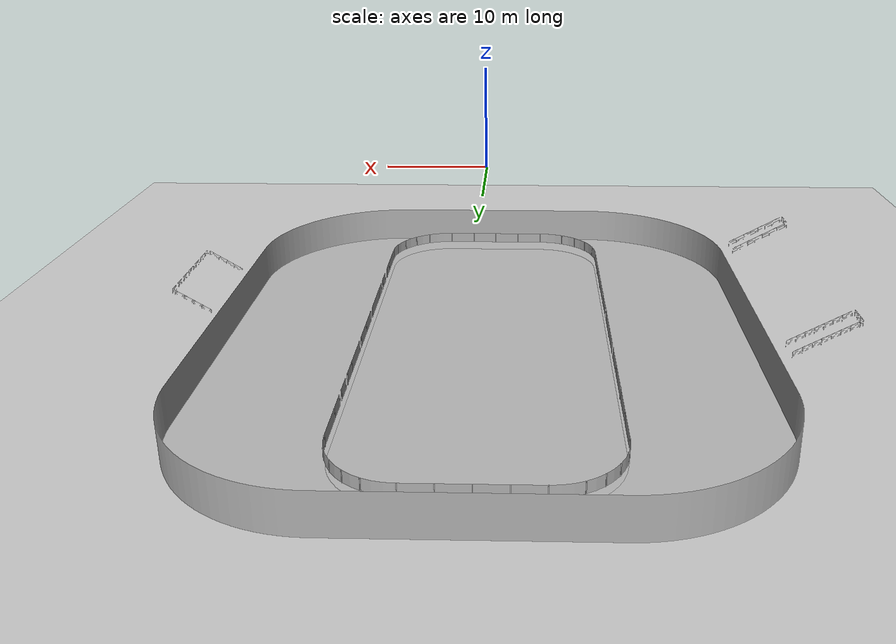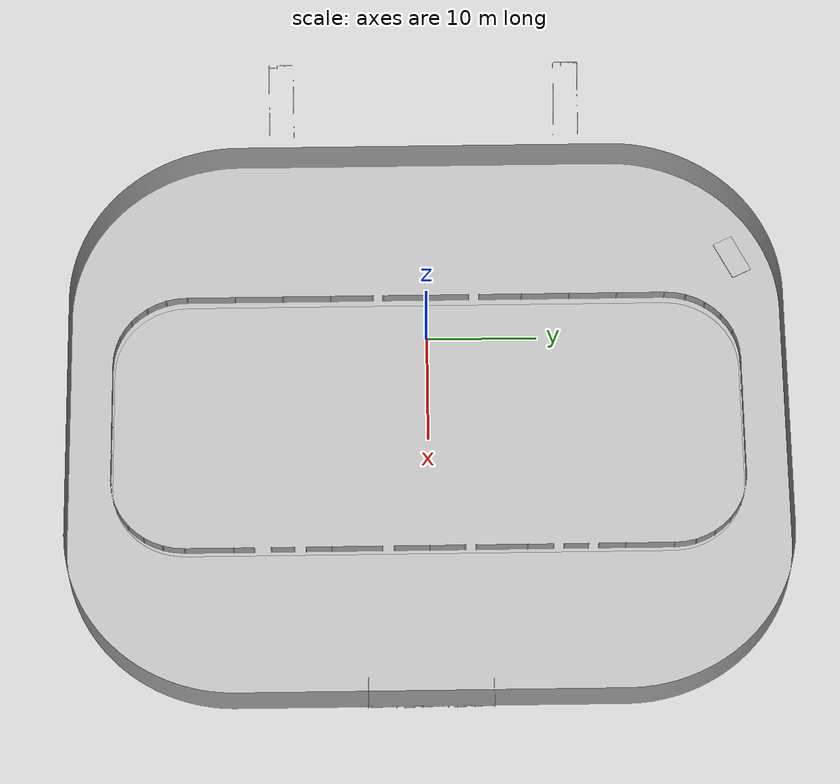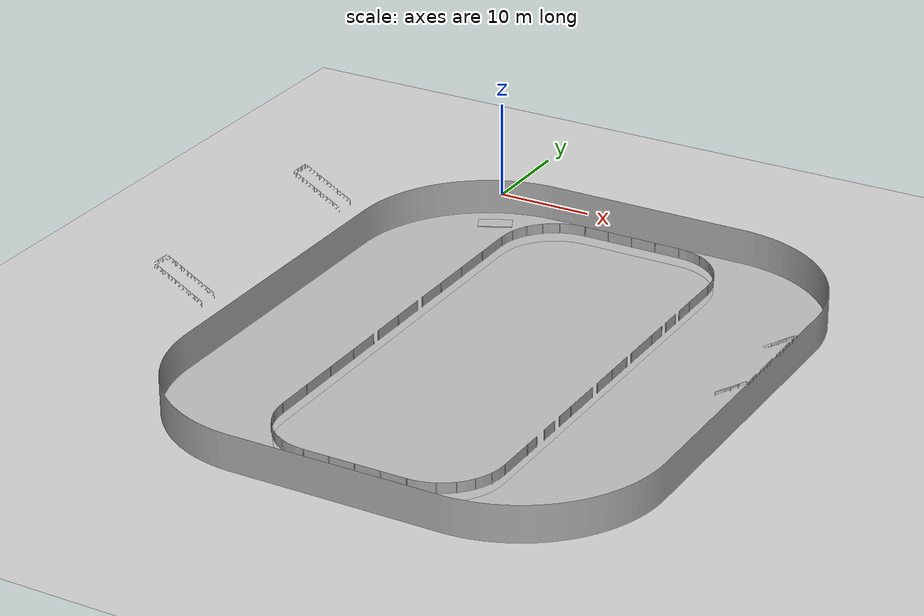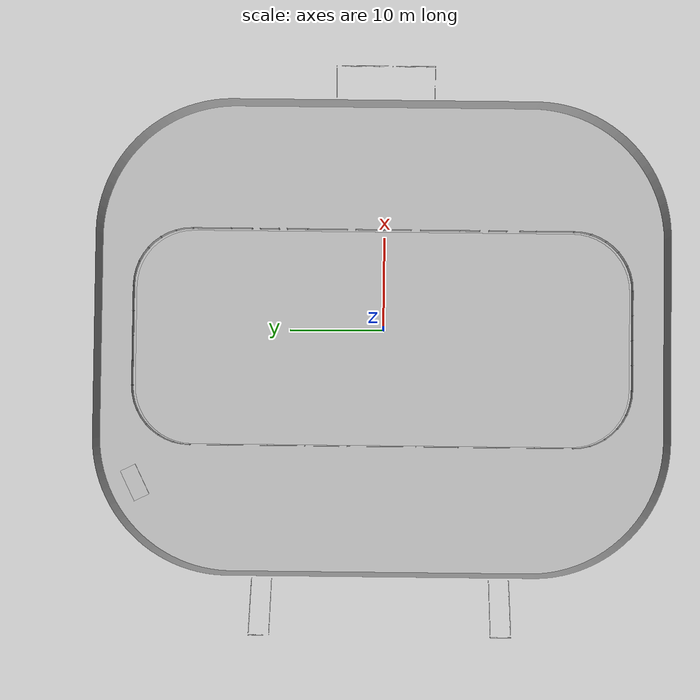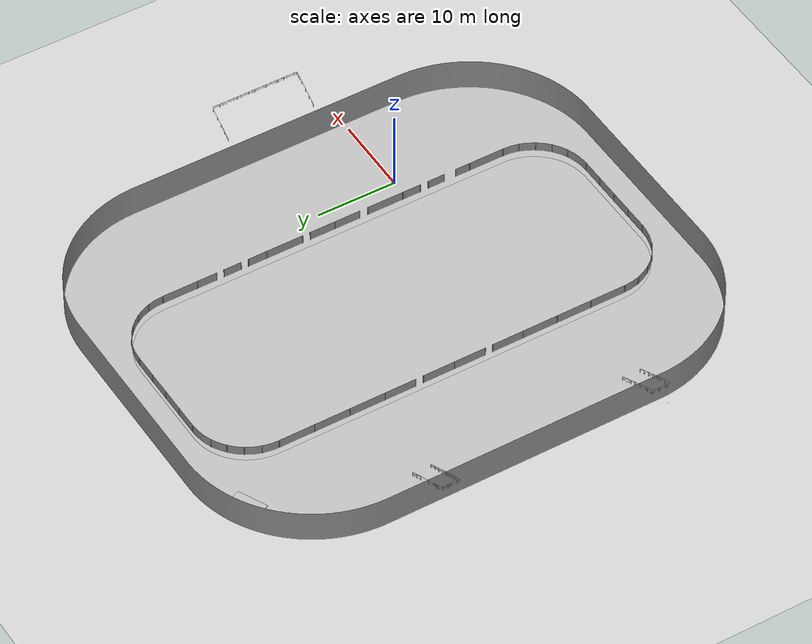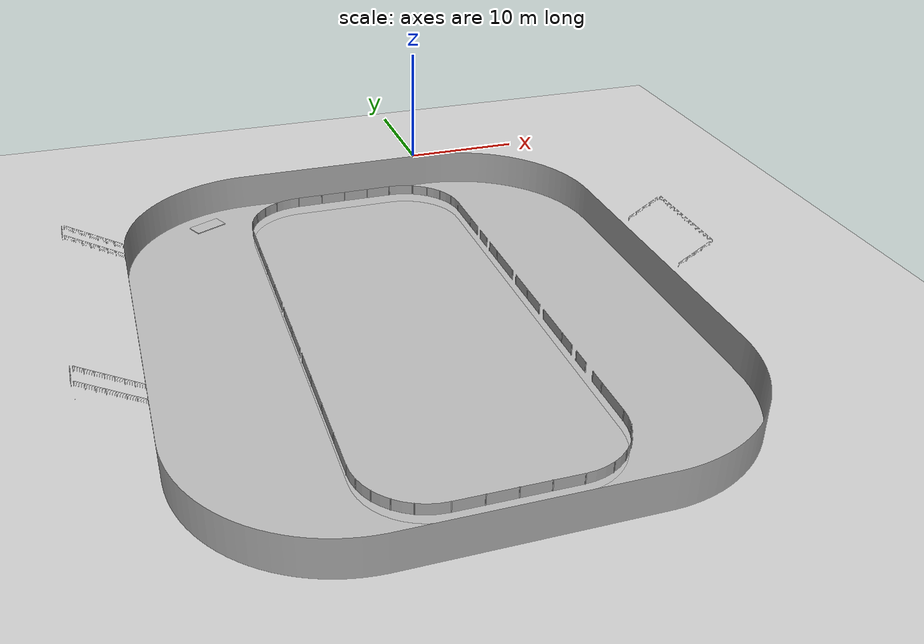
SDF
<?xml version="1.0" encoding="utf-8"?><sdf version="1.4"><world name="default">
<!-- A global light source -->
    <include>
      <uri>model://sun</uri>
    </include>

    <!-- A ground plane -->
    <include>
      <uri>model://ground_plane</uri>
      <pose>0 0 -19.56981 0 0 0</pose>
    </include>

    <physics type="ode">
      <real_time_update_rate>1000.0</real_time_update_rate>
      <max_step_size>0.001</max_step_size>
      <real_time_factor>1</real_time_factor>
      <ode>
        <solver>
          <type>quick</type>
          <iters>150</iters>
          <precon_iters>0</precon_iters>
          <sor>1.400000</sor>
          <use_dynamic_moi_rescaling>1</use_dynamic_moi_rescaling>
        </solver>
        <constraints>
          <cfm>0.00001</cfm>
          <erp>0.2</erp>
          <contact_max_correcting_vel>2000.000000</contact_max_correcting_vel>
          <contact_surface_layer>0.01000</contact_surface_layer>
        </constraints>
      </ode>
    </physics>

    <scene>
      <ambient>0.4 0.4 0.4 1</ambient>
      <background>0.7 0.7 0.7 1</background>
      <shadows>true</shadows>
    </scene>

    <gui fullscreen='0'>
      <camera name='user_camera'>
        <pose>0.8 0.0 12.0 0 1.5708 0</pose>
        <view_controller>orbit</view_controller>
      </camera>
    </gui>

<model name="Props_Props_0_AS1_0">
<static>1</static>
<link name="Props_Props_0_AS1_0">
<pose>1.131485 0.2336953 -19.56981 0 4.712389 0</pose>
<visual name="Props_Props_0_AS1_0"><pose>0 0 0 0 0 0</pose><geometry><mesh>
<uri>worlds/WKS-Gazebo/Props_Props_0_AS1_0.stl</uri>
<scale>1 1 1</scale></mesh></geometry><meta><layer>0</layer></meta></visual>
<collision name="Props_Props_0_AS1_0"><geometry><mesh><uri>worlds/WKS-Gazebo/Props_Props_0_AS1_0.stl</uri><scale>1 1 1</scale></mesh></geometry></collision></link></model>
<model name="Props_Props_0_ASAS1_0"><static>1</static><link name="Props_Props_0_ASAS1_0"><pose>1.131485 0.2336953 -19.56981 0 4.712389 0</pose><visual name="Props_Props_0_ASAS1_0"><pose>0 0 0 0 0 0</pose><geometry><mesh><uri>worlds/WKS-Gazebo/Props_Props_0_ASAS1_0.stl</uri><scale>1 1 1</scale></mesh></geometry><meta><layer>0</layer></meta></visual><collision name="Props_Props_0_ASAS1_0"><geometry><mesh><uri>worlds/WKS-Gazebo/Props_Props_0_ASAS1_0.stl</uri><scale>1 1 1</scale></mesh></geometry></collision></link></model><model name="Props_Props_0_Bqcd_01_0"><static>1</static><link name="Props_Props_0_Bqcd_01_0"><pose>1.131485 0.2336953 -19.56981 0 4.712389 0</pose><visual name="Props_Props_0_Bqcd_01_0"><pose>0 0 0 0 0 0</pose><geometry><mesh><uri>worlds/WKS-Gazebo/Props_Props_0_Bqcd_01_0.stl</uri><scale>1 1 1</scale></mesh></geometry><meta><layer>0</layer></meta></visual><collision name="Props_Props_0_Bqcd_01_0"><geometry><mesh><uri>worlds/WKS-Gazebo/Props_Props_0_Bqcd_01_0.stl</uri><scale>1 1 1</scale></mesh></geometry></collision></link></model><model name="Props_Props_0_Bqcd_02_0"><static>1</static><link name="Props_Props_0_Bqcd_02_0"><pose>1.131485 0.2336953 -19.56981 0 4.712389 0</pose><visual name="Props_Props_0_Bqcd_02_0"><pose>0 0 0 0 0 0</pose><geometry><mesh><uri>worlds/WKS-Gazebo/Props_Props_0_Bqcd_02_0.stl</uri><scale>1 1 1</scale></mesh></geometry><meta><layer>0</layer></meta></visual><collision name="Props_Props_0_Bqcd_02_0"><geometry><mesh><uri>worlds/WKS-Gazebo/Props_Props_0_Bqcd_02_0.stl</uri><scale>1 1 1</scale></mesh></geometry></collision></link></model><model name="Props_Props_0_Bqcd_03_0"><static>1</static><link name="Props_Props_0_Bqcd_03_0"><pose>1.131485 0.2336953 -19.56981 0 4.712389 0</pose><visual name="Props_Props_0_Bqcd_03_0"><pose>0 0 0 0 0 0</pose><geometry><mesh><uri>worlds/WKS-Gazebo/Props_Props_0_Bqcd_03_0.stl</uri><scale>1 1 1</scale></mesh></geometry><meta><layer>0</layer></meta></visual><collision name="Props_Props_0_Bqcd_03_0"><geometry><mesh><uri>worlds/WKS-Gazebo/Props_Props_0_Bqcd_03_0.stl</uri><scale>1 1 1</scale></mesh></geometry></collision></link></model><model name="Props_Props_0_Bqcd_04_0"><static>1</static><link name="Props_Props_0_Bqcd_04_0"><pose>1.131485 0.2336953 -19.56981 0 4.712389 0</pose><visual name="Props_Props_0_Bqcd_04_0"><pose>0 0 0 0 0 0</pose><geometry><mesh><uri>worlds/WKS-Gazebo/Props_Props_0_Bqcd_04_0.stl</uri><scale>1 1 1</scale></mesh></geometry><meta><layer>0</layer></meta></visual><collision name="Props_Props_0_Bqcd_04_0"><geometry><mesh><uri>worlds/WKS-Gazebo/Props_Props_0_Bqcd_04_0.stl</uri><scale>1 1 1</scale></mesh></geometry></collision></link></model><model name="Props_Props_0_Bqcd_05_0"><static>1</static><link name="Props_Props_0_Bqcd_05_0"><pose>1.131485 0.2336953 -19.56981 0 4.712389 0</pose><visual name="Props_Props_0_Bqcd_05_0"><pose>0 0 0 0 0 0</pose><geometry><mesh><uri>worlds/WKS-Gazebo/Props_Props_0_Bqcd_05_0.stl</uri><scale>1 1 1</scale></mesh></geometry><meta><layer>0</layer></meta></visual><collision name="Props_Props_0_Bqcd_05_0"><geometry><mesh><uri>worlds/WKS-Gazebo/Props_Props_0_Bqcd_05_0.stl</uri><scale>1 1 1</scale></mesh></geometry></collision></link></model>
</world></sdf>
